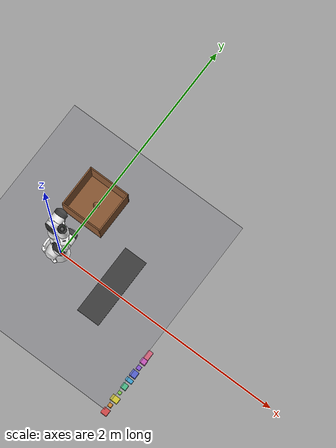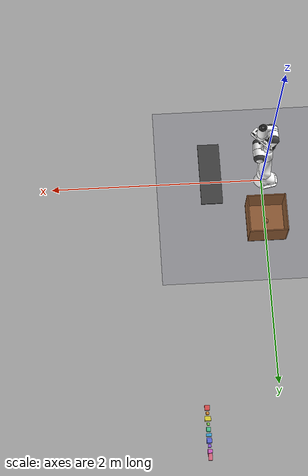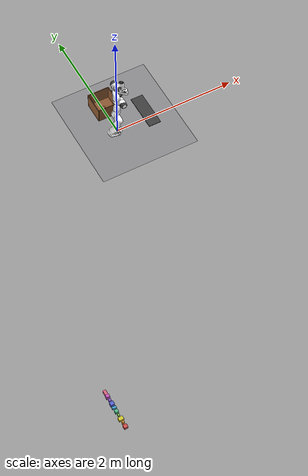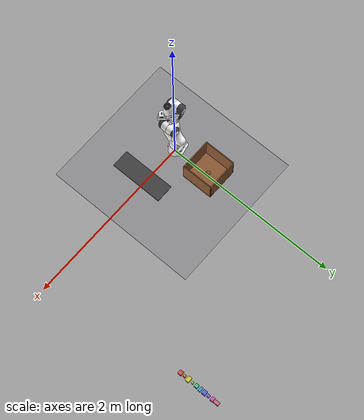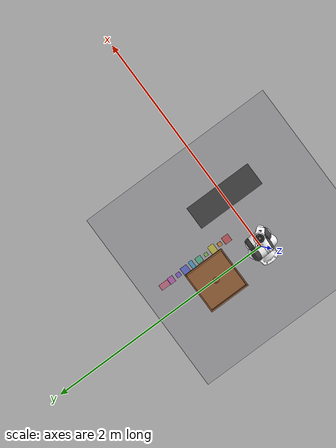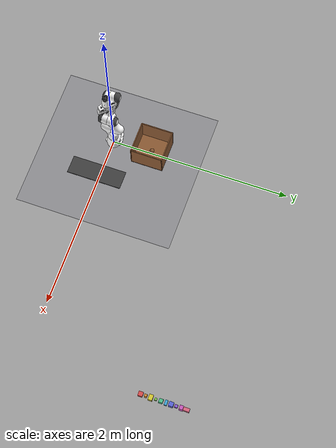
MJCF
<mujoco model="project1">
    <option timestep="0.001"/>
    <include file="panda_torque.xml"/>

    <default>
        <default class="pickbox">
            <geom friction="0.25 0.005 0.0001"/>
        </default>
        <default class="basket_wall">
            <geom friction="0.4 0.005 0.0001" rgba="0.55 0.35 0.20 1"/>
        </default>
    </default>

    <worldbody>
        <geom name="ground" type="plane" pos="0 0 0" size="1 1 0.01"
              rgba="0.45 0.45 0.50 1"/>

        <geom name="belt" type="box" pos="0.5 0.0 0.20" size="0.10 0.30 0.005"
              rgba="0.25 0.25 0.25 1"/>

        <body name="basket" pos="0.0 0.45 0.05">
            <geom class="basket_wall" type="box" size="0.18 0.18 0.005" pos="0 0 0"/>
            <geom class="basket_wall" type="sphere" size="0.025" pos="0 0 0.030"/>
            <geom class="basket_wall" type="box" size="0.005 0.18 0.12" pos="0.175 0 0.12"/>
            <geom class="basket_wall" type="box" size="0.005 0.18 0.12" pos="-0.175 0 0.12"/>
            <geom class="basket_wall" type="box" size="0.18 0.005 0.12" pos="0 0.175 0.12"/>
            <geom class="basket_wall" type="box" size="0.18 0.005 0.12" pos="0 -0.175 0.12"/>
        </body>

        <body name="box1"  pos="0 0.0 -10"><freejoint name="box1_joint"/>
            <geom class="pickbox" type="box" size="0.045 0.045 0.030" mass="0.33" rgba="0.85 0.30 0.30 1"/></body>
        <body name="box2"  pos="0 0.1 -10"><freejoint name="box2_joint"/>
            <geom class="pickbox" type="box" size="0.025 0.025 0.045" mass="0.08" rgba="0.85 0.55 0.20 1"/></body>
        <body name="box3"  pos="0 0.2 -10"><freejoint name="box3_joint"/>
            <geom class="pickbox" type="box" size="0.055 0.040 0.035" mass="0.46" rgba="0.85 0.80 0.20 1"/></body>
        <body name="box4"  pos="0 0.3 -10"><freejoint name="box4_joint"/>
            <geom class="pickbox" type="box" size="0.022 0.022 0.022" mass="0.04" rgba="0.50 0.80 0.30 1"/></body>
        <body name="box5"  pos="0 0.4 -10"><freejoint name="box5_joint"/>
            <geom class="pickbox" type="box" size="0.038 0.038 0.038" mass="0.29" rgba="0.30 0.75 0.55 1"/></body>
        <body name="box6"  pos="0 0.5 -10"><freejoint name="box6_joint"/>
            <geom class="pickbox" type="box" size="0.050 0.025 0.025" mass="0.17" rgba="0.25 0.65 0.85 1"/></body>
        <body name="box7"  pos="0 0.6 -10"><freejoint name="box7_joint"/>
            <geom class="pickbox" type="box" size="0.045 0.045 0.045" mass="0.50" rgba="0.35 0.40 0.85 1"/></body>
        <body name="box8"  pos="0 0.7 -10"><freejoint name="box8_joint"/>
            <geom class="pickbox" type="box" size="0.028 0.028 0.028" mass="0.10" rgba="0.55 0.35 0.85 1"/></body>
        <body name="box9"  pos="0 0.8 -10"><freejoint name="box9_joint"/>
            <geom class="pickbox" type="box" size="0.040 0.035 0.050" mass="0.42" rgba="0.80 0.35 0.75 1"/></body>
        <body name="box10" pos="0 0.9 -10"><freejoint name="box10_joint"/>
            <geom class="pickbox" type="box" size="0.035 0.060 0.030" mass="0.38" rgba="0.85 0.40 0.50 1"/></body>
    </worldbody>

    <equality>
        <weld name="suction_box1"  body1="hand" body2="box1"  active="false" solref="0.05 1.5" solimp="0.9 0.95 0.001"/>
        <weld name="suction_box2"  body1="hand" body2="box2"  active="false" solref="0.05 1.5" solimp="0.9 0.95 0.001"/>
        <weld name="suction_box3"  body1="hand" body2="box3"  active="false" solref="0.05 1.5" solimp="0.9 0.95 0.001"/>
        <weld name="suction_box4"  body1="hand" body2="box4"  active="false" solref="0.05 1.5" solimp="0.9 0.95 0.001"/>
        <weld name="suction_box5"  body1="hand" body2="box5"  active="false" solref="0.05 1.5" solimp="0.9 0.95 0.001"/>
        <weld name="suction_box6"  body1="hand" body2="box6"  active="false" solref="0.05 1.5" solimp="0.9 0.95 0.001"/>
        <weld name="suction_box7"  body1="hand" body2="box7"  active="false" solref="0.05 1.5" solimp="0.9 0.95 0.001"/>
        <weld name="suction_box8"  body1="hand" body2="box8"  active="false" solref="0.05 1.5" solimp="0.9 0.95 0.001"/>
        <weld name="suction_box9"  body1="hand" body2="box9"  active="false" solref="0.05 1.5" solimp="0.9 0.95 0.001"/>
        <weld name="suction_box10" body1="hand" body2="box10" active="false" solref="0.05 1.5" solimp="0.9 0.95 0.001"/>
    </equality>
</mujoco>

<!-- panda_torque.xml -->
<mujoco model="panda_torque">
  <compiler angle="radian" meshdir="assets" autolimits="true"/>

  <option integrator="implicitfast"/>

  <visual>
    <quality shadowsize="4096" offsamples="8"/>
  </visual>

  <default>
    <default class="panda">
      <material specular="0.5" shininess="0.25"/>
      <joint armature="0.1" damping="1" axis="0 0 1" range="-2.8973 2.8973"/>
      <general dyntype="none" biastype="none" gainprm="1" ctrlrange="-87 87" forcerange="-87 87"/>
      <default class="finger">
        <joint axis="0 1 0" type="slide" range="0 0.04"/>
      </default>

      <default class="visual">
        <geom type="mesh" contype="0" conaffinity="0" group="2"/>
      </default>
      <default class="collision">
        <geom type="mesh" group="3"/>
        <default class="fingertip_pad_collision_1">
          <geom type="box" size="0.0085 0.004 0.0085" pos="0 0.0055 0.0445"/>
        </default>
        <default class="fingertip_pad_collision_2">
          <geom type="box" size="0.003 0.002 0.003" pos="0.0055 0.002 0.05"/>
        </default>
        <default class="fingertip_pad_collision_3">
          <geom type="box" size="0.003 0.002 0.003" pos="-0.0055 0.002 0.05"/>
        </default>
        <default class="fingertip_pad_collision_4">
          <geom type="box" size="0.003 0.002 0.0035" pos="0.0055 0.002 0.0395"/>
        </default>
        <default class="fingertip_pad_collision_5">
          <geom type="box" size="0.003 0.002 0.0035" pos="-0.0055 0.002 0.0395"/>
        </default>
      </default>
    </default>
  </default>

  <asset>
    <material class="panda" name="white" rgba="1 1 1 1"/>
    <material class="panda" name="off_white" rgba="0.901961 0.921569 0.929412 1"/>
    <material class="panda" name="black" rgba="0.25 0.25 0.25 1"/>
    <material class="panda" name="green" rgba="0 1 0 1"/>
    <material class="panda" name="light_blue" rgba="0.039216 0.541176 0.780392 1"/>

    <!-- Collision meshes -->
    <mesh name="link0_c" file="link0.stl"/>
    <mesh name="link1_c" file="link1.stl"/>
    <mesh name="link2_c" file="link2.stl"/>
    <mesh name="link3_c" file="link3.stl"/>
    <mesh name="link4_c" file="link4.stl"/>
    <mesh name="link5_c0" file="link5_collision_0.obj"/>
    <mesh name="link5_c1" file="link5_collision_1.obj"/>
    <mesh name="link5_c2" file="link5_collision_2.obj"/>
    <mesh name="link6_c" file="link6.stl"/>
    <mesh name="link7_c" file="link7.stl"/>
    <mesh name="hand_c" file="hand.stl"/>

    <!-- Visual meshes -->
    <mesh file="link0_0.obj"/>
    <mesh file="link0_1.obj"/>
    <mesh file="link0_2.obj"/>
    <mesh file="link0_3.obj"/>
    <mesh file="link0_4.obj"/>
    <mesh file="link0_5.obj"/>
    <mesh file="link0_7.obj"/>
    <mesh file="link0_8.obj"/>
    <mesh file="link0_9.obj"/>
    <mesh file="link0_10.obj"/>
    <mesh file="link0_11.obj"/>
    <mesh file="link1.obj"/>
    <mesh file="link2.obj"/>
    <mesh file="link3_0.obj"/>
    <mesh file="link3_1.obj"/>
    <mesh file="link3_2.obj"/>
    <mesh file="link3_3.obj"/>
    <mesh file="link4_0.obj"/>
    <mesh file="link4_1.obj"/>
    <mesh file="link4_2.obj"/>
    <mesh file="link4_3.obj"/>
    <mesh file="link5_0.obj"/>
    <mesh file="link5_1.obj"/>
    <mesh file="link5_2.obj"/>
    <mesh file="link6_0.obj"/>
    <mesh file="link6_1.obj"/>
    <mesh file="link6_2.obj"/>
    <mesh file="link6_3.obj"/>
    <mesh file="link6_4.obj"/>
    <mesh file="link6_5.obj"/>
    <mesh file="link6_6.obj"/>
    <mesh file="link6_7.obj"/>
    <mesh file="link6_8.obj"/>
    <mesh file="link6_9.obj"/>
    <mesh file="link6_10.obj"/>
    <mesh file="link6_11.obj"/>
    <mesh file="link6_12.obj"/>
    <mesh file="link6_13.obj"/>
    <mesh file="link6_14.obj"/>
    <mesh file="link6_15.obj"/>
    <mesh file="link6_16.obj"/>
    <mesh file="link7_0.obj"/>
    <mesh file="link7_1.obj"/>
    <mesh file="link7_2.obj"/>
    <mesh file="link7_3.obj"/>
    <mesh file="link7_4.obj"/>
    <mesh file="link7_5.obj"/>
    <mesh file="link7_6.obj"/>
    <mesh file="link7_7.obj"/>
    <mesh file="hand_0.obj"/>
    <mesh file="hand_1.obj"/>
    <mesh file="hand_2.obj"/>
    <mesh file="hand_3.obj"/>
    <mesh file="hand_4.obj"/>
    <mesh file="finger_0.obj"/>
    <mesh file="finger_1.obj"/>
  </asset>

  <worldbody>
    <light name="top" pos="0 0 2" mode="trackcom"/>
    <body name="link0" childclass="panda">
      <inertial mass="0.629769" pos="-0.041018 -0.00014 0.049974"
        fullinertia="0.00315 0.00388 0.004285 8.2904e-7 0.00015 8.2299e-6"/>
      <geom mesh="link0_0" material="off_white" class="visual"/>
      <geom mesh="link0_1" material="black" class="visual"/>
      <geom mesh="link0_2" material="off_white" class="visual"/>
      <geom mesh="link0_3" material="black" class="visual"/>
      <geom mesh="link0_4" material="off_white" class="visual"/>
      <geom mesh="link0_5" material="black" class="visual"/>
      <geom mesh="link0_7" material="white" class="visual"/>
      <geom mesh="link0_8" material="white" class="visual"/>
      <geom mesh="link0_9" material="black" class="visual"/>
      <geom mesh="link0_10" material="off_white" class="visual"/>
      <geom mesh="link0_11" material="white" class="visual"/>
      <geom mesh="link0_c" class="collision"/>
      <body name="link1" pos="0 0 0.333">
        <inertial mass="4.970684" pos="0.003875 0.002081 -0.04762"
          fullinertia="0.70337 0.70661 0.0091170 -0.00013900 0.0067720 0.019169"/>
        <joint name="joint1"/>
        <geom material="white" mesh="link1" class="visual"/>
        <geom mesh="link1_c" class="collision"/>
        <body name="link2" quat="1 -1 0 0">
          <inertial mass="0.646926" pos="-0.003141 -0.02872 0.003495"
            fullinertia="0.0079620 2.8110e-2 2.5995e-2 -3.925e-3 1.0254e-2 7.04e-4"/>
          <joint name="joint2" range="-1.7628 1.7628"/>
          <geom material="white" mesh="link2" class="visual"/>
          <geom mesh="link2_c" class="collision"/>
          <body name="link3" pos="0 -0.316 0" quat="1 1 0 0">
            <joint name="joint3"/>
            <inertial mass="3.228604" pos="2.7518e-2 3.9252e-2 -6.6502e-2"
              fullinertia="3.7242e-2 3.6155e-2 1.083e-2 -4.761e-3 -1.1396e-2 -1.2805e-2"/>
            <geom mesh="link3_0" material="white" class="visual"/>
            <geom mesh="link3_1" material="white" class="visual"/>
            <geom mesh="link3_2" material="white" class="visual"/>
            <geom mesh="link3_3" material="black" class="visual"/>
            <geom mesh="link3_c" class="collision"/>
            <body name="link4" pos="0.0825 0 0" quat="1 1 0 0">
              <inertial mass="3.587895" pos="-5.317e-2 1.04419e-1 2.7454e-2"
                fullinertia="2.5853e-2 1.9552e-2 2.8323e-2 7.796e-3 -1.332e-3 8.641e-3"/>
              <joint name="joint4" range="-3.0718 -0.0698"/>
              <geom mesh="link4_0" material="white" class="visual"/>
              <geom mesh="link4_1" material="white" class="visual"/>
              <geom mesh="link4_2" material="black" class="visual"/>
              <geom mesh="link4_3" material="white" class="visual"/>
              <geom mesh="link4_c" class="collision"/>
              <body name="link5" pos="-0.0825 0.384 0" quat="1 -1 0 0">
                <inertial mass="1.225946" pos="-1.1953e-2 4.1065e-2 -3.8437e-2"
                  fullinertia="3.5549e-2 2.9474e-2 8.627e-3 -2.117e-3 -4.037e-3 2.29e-4"/>
                <joint name="joint5"/>
                <geom mesh="link5_0" material="black" class="visual"/>
                <geom mesh="link5_1" material="white" class="visual"/>
                <geom mesh="link5_2" material="white" class="visual"/>
                <geom mesh="link5_c0" class="collision"/>
                <geom mesh="link5_c1" class="collision"/>
                <geom mesh="link5_c2" class="collision"/>
                <body name="link6" quat="1 1 0 0">
                  <inertial mass="1.666555" pos="6.0149e-2 -1.4117e-2 -1.0517e-2"
                    fullinertia="1.964e-3 4.354e-3 5.433e-3 1.09e-4 -1.158e-3 3.41e-4"/>
                  <joint name="joint6" range="-0.0175 3.7525"/>
                  <geom mesh="link6_0" material="off_white" class="visual"/>
                  <geom mesh="link6_1" material="white" class="visual"/>
                  <geom mesh="link6_2" material="black" class="visual"/>
                  <geom mesh="link6_3" material="white" class="visual"/>
                  <geom mesh="link6_4" material="white" class="visual"/>
                  <geom mesh="link6_5" material="white" class="visual"/>
                  <geom mesh="link6_6" material="white" class="visual"/>
                  <geom mesh="link6_7" material="light_blue" class="visual"/>
                  <geom mesh="link6_8" material="light_blue" class="visual"/>
                  <geom mesh="link6_9" material="black" class="visual"/>
                  <geom mesh="link6_10" material="black" class="visual"/>
                  <geom mesh="link6_11" material="white" class="visual"/>
                  <geom mesh="link6_12" material="green" class="visual"/>
                  <geom mesh="link6_13" material="white" class="visual"/>
                  <geom mesh="link6_14" material="black" class="visual"/>
                  <geom mesh="link6_15" material="black" class="visual"/>
                  <geom mesh="link6_16" material="white" class="visual"/>
                  <geom mesh="link6_c" class="collision"/>
                  <body name="link7" pos="0.088 0 0" quat="1 1 0 0">
                    <inertial mass="7.35522e-01" pos="1.0517e-2 -4.252e-3 6.1597e-2"
                      fullinertia="1.2516e-2 1.0027e-2 4.815e-3 -4.28e-4 -1.196e-3 -7.41e-4"/>
                    <joint name="joint7"/>
                    <geom mesh="link7_0" material="white" class="visual"/>
                    <geom mesh="link7_1" material="black" class="visual"/>
                    <geom mesh="link7_2" material="black" class="visual"/>
                    <geom mesh="link7_3" material="black" class="visual"/>
                    <geom mesh="link7_4" material="black" class="visual"/>
                    <geom mesh="link7_5" material="black" class="visual"/>
                    <geom mesh="link7_6" material="black" class="visual"/>
                    <geom mesh="link7_7" material="white" class="visual"/>
                    <geom mesh="link7_c" class="collision"/>
                    <body name="hand" pos="0 0 0.107" quat="0.9238795 0 0 -0.3826834">
                      <inertial mass="0.73" pos="-0.01 0 0.03" diaginertia="0.001 0.0025 0.0017"/>
                      <geom mesh="hand_0" material="off_white" class="visual"/>
                      <geom mesh="hand_1" material="black" class="visual"/>
                      <geom mesh="hand_2" material="black" class="visual"/>
                      <geom mesh="hand_3" material="white" class="visual"/>
                      <geom mesh="hand_4" material="off_white" class="visual"/>
                      <geom mesh="hand_c" class="collision"/>
                      <site name="ee_site" pos="0 0 0.11" size="0.012" rgba="1 1 0 0.85"/>
                      <geom name="suction_pad" type="sphere" size="0.012" pos="0 0 0.11"
                            rgba="0.15 0.15 0.15 1"/>
                      <body name="left_finger" pos="0 0 0.0584">
                        <inertial mass="0.015" pos="0 0 0" diaginertia="2.375e-6 2.375e-6 7.5e-7"/>
                        <joint name="finger_joint1" class="finger"/>
                        <geom mesh="finger_0" material="off_white" class="visual"/>
                        <geom mesh="finger_1" material="black" class="visual"/>
                        <geom mesh="finger_0" class="collision"/>
                        <geom class="fingertip_pad_collision_1"/>
                        <geom class="fingertip_pad_collision_2"/>
                        <geom class="fingertip_pad_collision_3"/>
                        <geom class="fingertip_pad_collision_4"/>
                        <geom class="fingertip_pad_collision_5"/>
                      </body>
                      <body name="right_finger" pos="0 0 0.0584" quat="0 0 0 1">
                        <inertial mass="0.015" pos="0 0 0" diaginertia="2.375e-6 2.375e-6 7.5e-7"/>
                        <joint name="finger_joint2" class="finger"/>
                        <geom mesh="finger_0" material="off_white" class="visual"/>
                        <geom mesh="finger_1" material="black" class="visual"/>
                        <geom mesh="finger_0" class="collision"/>
                        <geom class="fingertip_pad_collision_1"/>
                        <geom class="fingertip_pad_collision_2"/>
                        <geom class="fingertip_pad_collision_3"/>
                        <geom class="fingertip_pad_collision_4"/>
                        <geom class="fingertip_pad_collision_5"/>
                      </body>
                    </body>
                  </body>
                </body>
              </body>
            </body>
          </body>
        </body>
      </body>
    </body>
  </worldbody>

  <tendon>
    <fixed name="split">
      <joint joint="finger_joint1" coef="0.5"/>
      <joint joint="finger_joint2" coef="0.5"/>
    </fixed>
  </tendon>

  <equality>
    <joint joint1="finger_joint1" joint2="finger_joint2" solimp="0.95 0.99 0.001" solref="0.005 1"/>
  </equality>

  <!-- Torque control: ctrl = torque (Nm). Arm 1-4: ±87 Nm, 5-7: ±12 Nm. Finger unchanged. -->
  <actuator>
    <general class="panda" name="actuator1" joint="joint1" gainprm="1" biastype="none" ctrlrange="-87 87" forcerange="-87 87"/>
    <general class="panda" name="actuator2" joint="joint2" gainprm="1" biastype="none" ctrlrange="-87 87" forcerange="-87 87"/>
    <general class="panda" name="actuator3" joint="joint3" gainprm="1" biastype="none" ctrlrange="-87 87" forcerange="-87 87"/>
    <general class="panda" name="actuator4" joint="joint4" gainprm="1" biastype="none" ctrlrange="-87 87" forcerange="-87 87"/>
    <general class="panda" name="actuator5" joint="joint5" gainprm="1" biastype="none" ctrlrange="-12 12" forcerange="-12 12"/>
    <general class="panda" name="actuator6" joint="joint6" gainprm="1" biastype="none" ctrlrange="-12 12" forcerange="-12 12"/>
    <general class="panda" name="actuator7" joint="joint7" gainprm="1" biastype="none" ctrlrange="-12 12" forcerange="-12 12"/>
    <general class="panda" name="actuator8" tendon="split" forcerange="-100 100" ctrlrange="0 255"
      gainprm="0.01568627451 0 0" biasprm="0 -100 -10"/>
  </actuator>

  <sensor>
    <force name="ee_force" site="ee_site"/>
    <torque name="ee_torque" site="ee_site"/>
  </sensor>

  <keyframe>
    <key name="home" qpos="0 0 0 -1.57079 0 1.57079 -0.7853 0.04 0.04" ctrl="0 0 0 0 0 0 0 255"/>
  </keyframe>

  <contact>
    <exclude body1="link0" body2="link1"/>
  </contact>
</mujoco>
